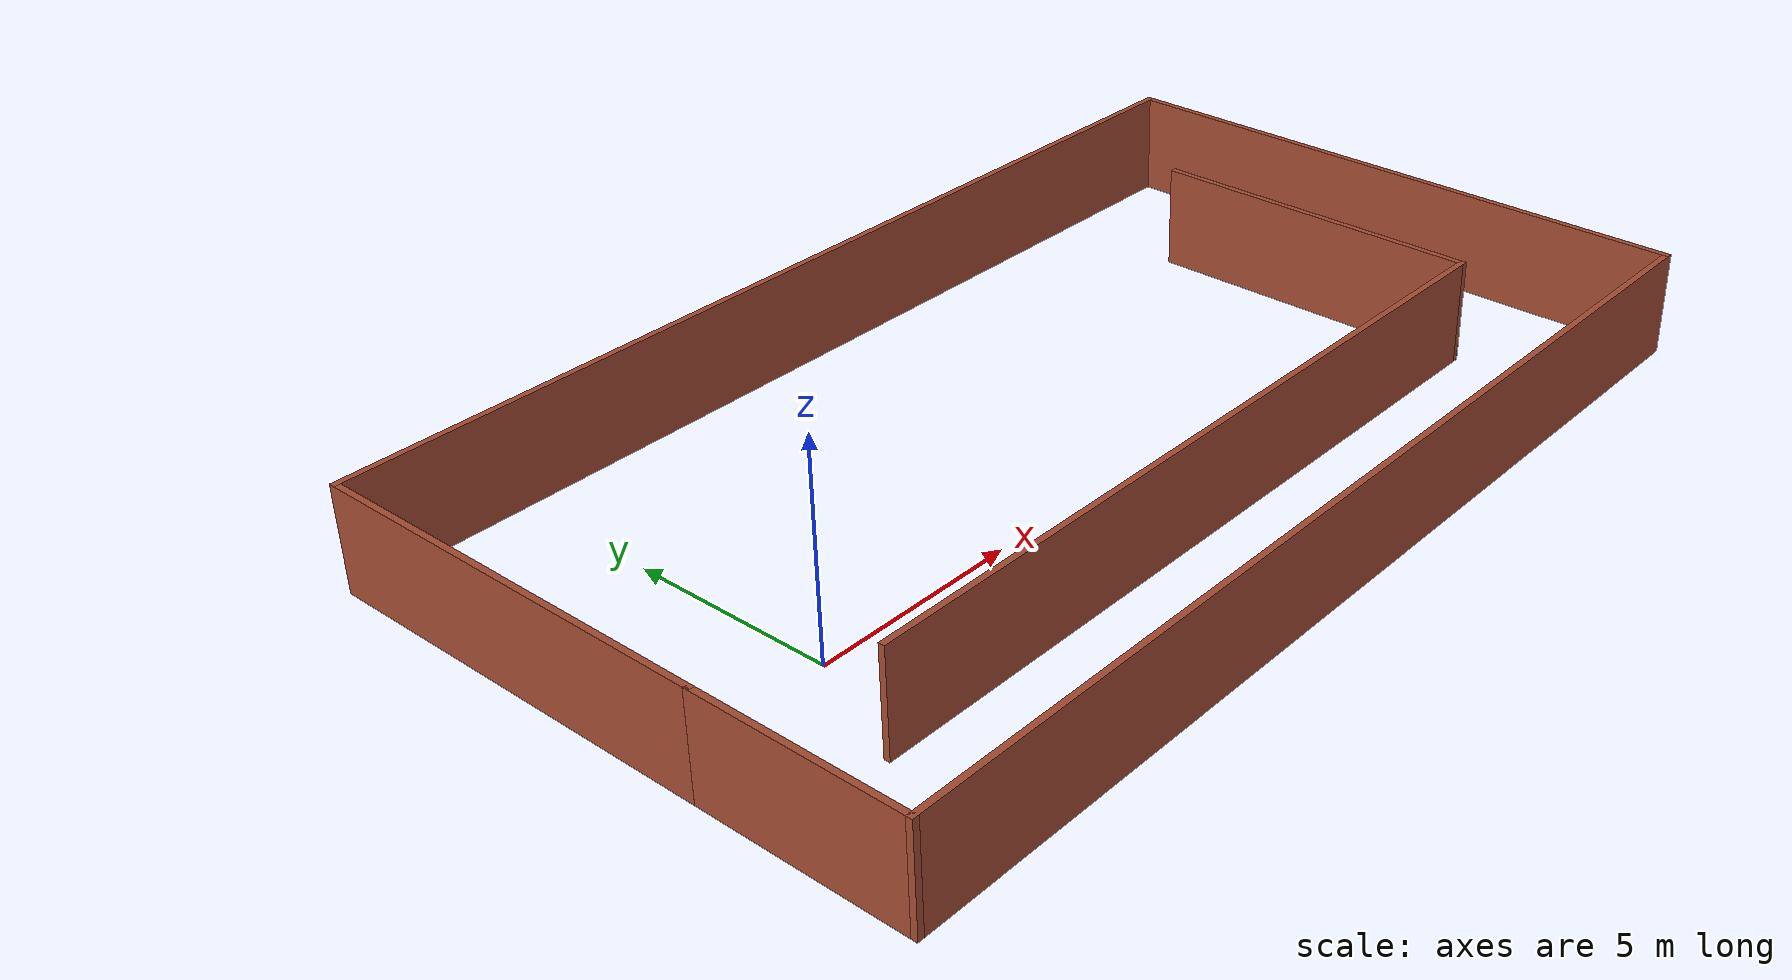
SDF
<?xml version='1.0'?>
<sdf version='1.7'>
  <model name='wall'>
    <pose>8.42535 1.23338 0 0 -0 0</pose>
    <link name='Wall_0'>
      <collision name='Wall_0_Collision'>
        <geometry>
          <box>
            <size>10 0.15 2.5</size>
          </box>
        </geometry>
        <pose>0 0 1.25 0 -0 0</pose>
      </collision>
      <visual name='Wall_0_Visual'>
        <pose>0 0 1.25 0 -0 0</pose>
        <geometry>
          <box>
            <size>10 0.15 2.5</size>
          </box>
        </geometry>
        <material>
          <script>
            <uri>file://media/materials/scripts/gazebo.material</uri>
            <name>Gazebo/Bricks</name>
          </script>
          <ambient>1 1 1 1</ambient>
        </material>
        <meta>
          <layer>0</layer>
        </meta>
      </visual>
      <pose>-12.55 2.5 0 0 -0 1.5708</pose>
    </link>
    <link name='Wall_1'>
      <collision name='Wall_1_Collision'>
        <geometry>
          <box>
            <size>25.25 0.15 2.5</size>
          </box>
        </geometry>
        <pose>0 0 1.25 0 -0 0</pose>
      </collision>
      <visual name='Wall_1_Visual'>
        <pose>0 0 1.25 0 -0 0</pose>
        <geometry>
          <box>
            <size>25.25 0.15 2.5</size>
          </box>
        </geometry>
        <material>
          <script>
            <uri>file://media/materials/scripts/gazebo.material</uri>
            <name>Gazebo/Bricks</name>
          </script>
          <ambient>1 1 1 1</ambient>
        </material>
        <meta>
          <layer>0</layer>
        </meta>
      </visual>
      <pose>0 7.425 0 0 -0 0</pose>
    </link>
    <link name='Wall_10'>
      <collision name='Wall_10_Collision'>
        <geometry>
          <box>
            <size>19 0.15 2.5</size>
          </box>
        </geometry>
        <pose>0 0 1.25 0 -0 0</pose>
      </collision>
      <visual name='Wall_10_Visual'>
        <pose>0 0 1.25 0 -0 0</pose>
        <geometry>
          <box>
            <size>19 0.15 2.5</size>
          </box>
        </geometry>
        <material>
          <script>
            <uri>file://media/materials/scripts/gazebo.material</uri>
            <name>Gazebo/Bricks</name>
          </script>
          <ambient>1 1 1 1</ambient>
        </material>
        <meta>
          <layer>0</layer>
        </meta>
      </visual>
      <pose>-0.192439 -4.04257 0 0 -0 0</pose>
    </link>
    <link name='Wall_11'>
      <collision name='Wall_11_Collision'>
        <geometry>
          <box>
            <size>8.25 0.15 2.5</size>
          </box>
        </geometry>
        <pose>0 0 1.25 0 -0 0</pose>
      </collision>
      <visual name='Wall_11_Visual'>
        <pose>0 0 1.25 0 -0 0</pose>
        <geometry>
          <box>
            <size>8.25 0.15 2.5</size>
          </box>
        </geometry>
        <material>
          <script>
            <uri>file://media/materials/scripts/gazebo.material</uri>
            <name>Gazebo/Bricks</name>
          </script>
          <ambient>1 1 1 1</ambient>
        </material>
        <meta>
          <layer>0</layer>
        </meta>
      </visual>
      <pose>9.23256 0.007427 0 0 -0 1.5708</pose>
    </link>
    <link name='Wall_2'>
      <collision name='Wall_2_Collision'>
        <geometry>
          <box>
            <size>15 0.15 2.5</size>
          </box>
        </geometry>
        <pose>0 0 1.25 0 -0 0</pose>
      </collision>
      <visual name='Wall_2_Visual'>
        <pose>0 0 1.25 0 -0 0</pose>
        <geometry>
          <box>
            <size>15 0.15 2.5</size>
          </box>
        </geometry>
        <material>
          <script>
            <uri>file://media/materials/scripts/gazebo.material</uri>
            <name>Gazebo/Bricks</name>
          </script>
          <ambient>1 1 1 1</ambient>
        </material>
        <meta>
          <layer>0</layer>
        </meta>
      </visual>
      <pose>12.55 0 0 0 -0 -1.5708</pose>
    </link>
    <link name='Wall_3'>
      <collision name='Wall_3_Collision'>
        <geometry>
          <box>
            <size>25.25 0.15 2.5</size>
          </box>
        </geometry>
        <pose>0 0 1.25 0 -0 0</pose>
      </collision>
      <visual name='Wall_3_Visual'>
        <pose>0 0 1.25 0 -0 0</pose>
        <geometry>
          <box>
            <size>25.25 0.15 2.5</size>
          </box>
        </geometry>
        <material>
          <script>
            <uri>file://media/materials/scripts/gazebo.material</uri>
            <name>Gazebo/Bricks</name>
          </script>
          <ambient>1 1 1 1</ambient>
        </material>
        <meta>
          <layer>0</layer>
        </meta>
      </visual>
      <pose>0 -7.425 0 0 -0 3.14159</pose>
    </link>
    <link name='Wall_4'>
      <collision name='Wall_4_Collision'>
        <geometry>
          <box>
            <size>5.15 0.15 2.5</size>
          </box>
        </geometry>
        <pose>0 0 1.25 0 -0 0</pose>
      </collision>
      <visual name='Wall_4_Visual'>
        <pose>0 0 1.25 0 -0 0</pose>
        <geometry>
          <box>
            <size>5.15 0.15 2.5</size>
          </box>
        </geometry>
        <material>
          <script>
            <uri>file://media/materials/scripts/gazebo.material</uri>
            <name>Gazebo/Bricks</name>
          </script>
          <ambient>1 1 1 1</ambient>
        </material>
        <meta>
          <layer>0</layer>
        </meta>
      </visual>
      <pose>-12.55 -4.925 0 0 -0 1.5708</pose>
    </link>
    <static>1</static>
  </model>
</sdf>
